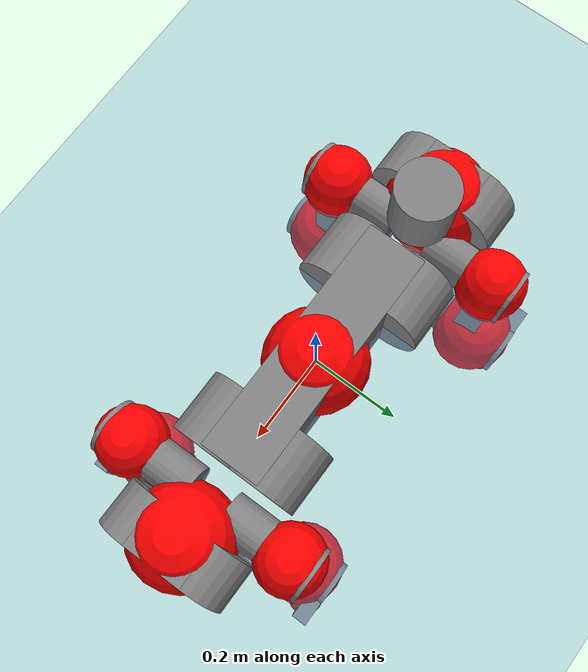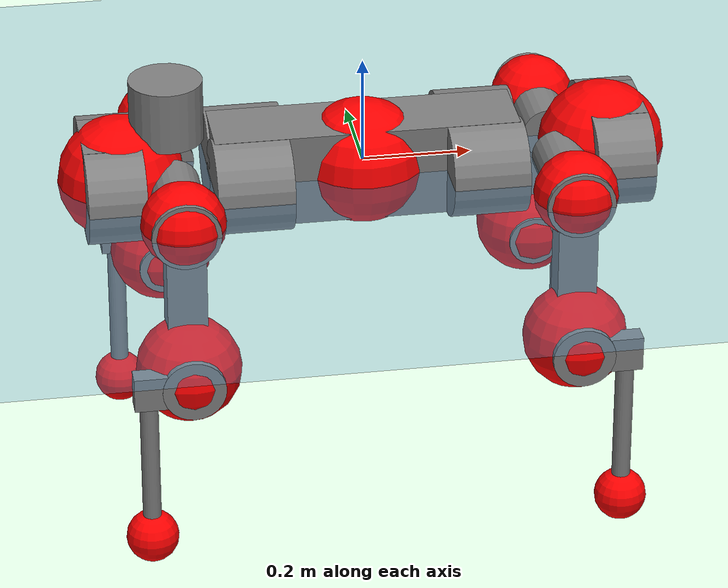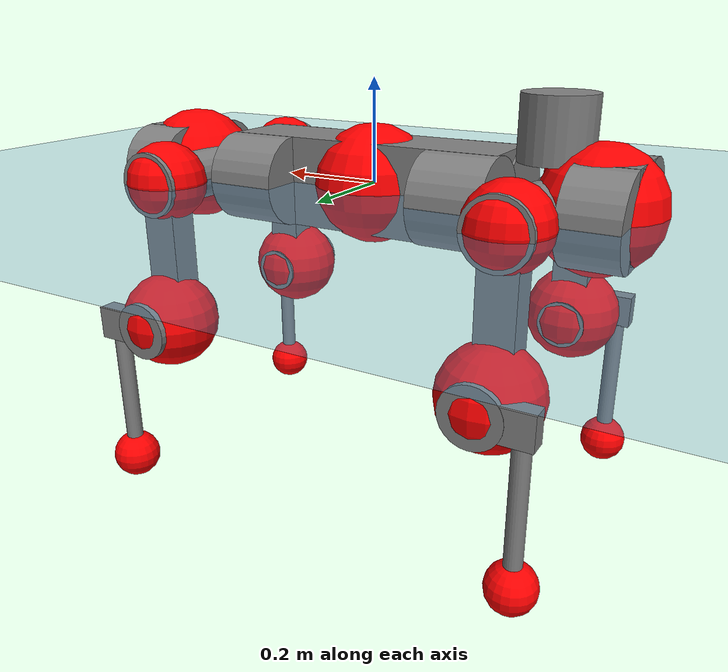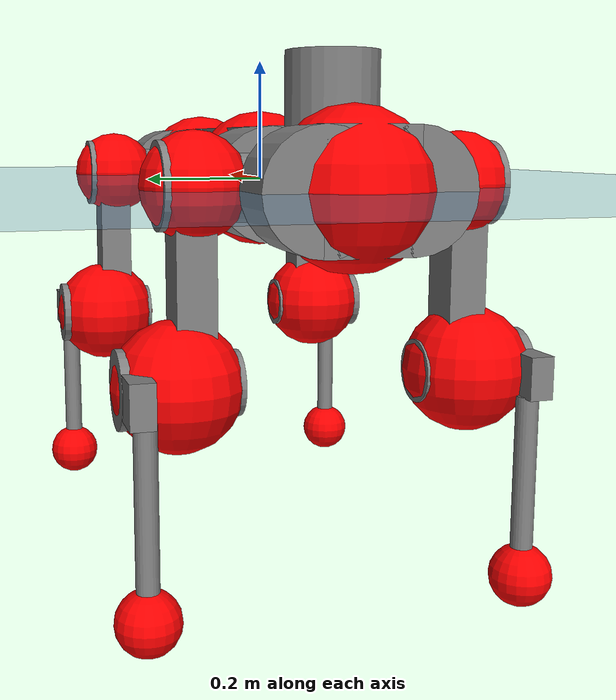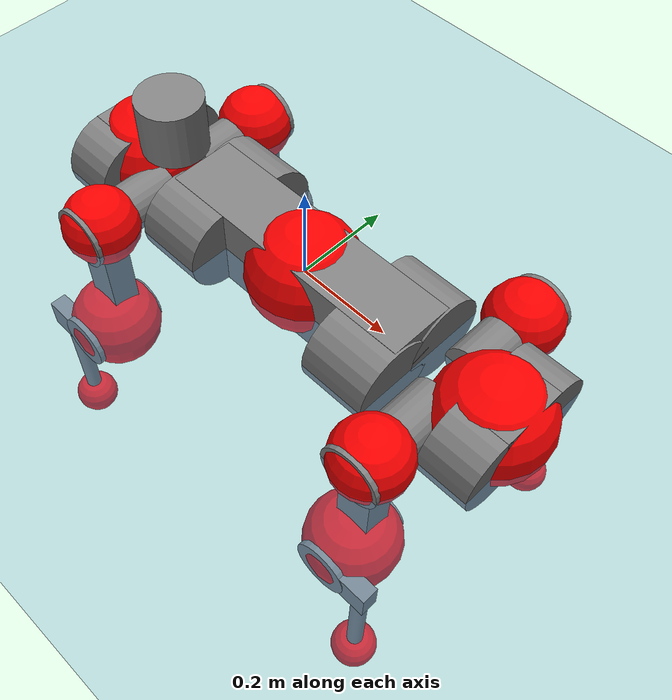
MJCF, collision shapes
<mujoco model="anymal_c">
  <compiler angle="radian" assetdir="assets" balanceinertia="true" inertiafromgeom="false"/>

  <option timestep="0.005" density="1.2" viscosity="2e-05"/>

  <size nkey="1"/>

  <visual>
    <quality shadowsize="8192"/>
    <map shadowclip="0.5"/>
  </visual>

  <default>
    <default class="/">
      <material specular="0" shininess="0.25"/>
      <geom contype="0" conaffinity="0" group="1" solref="-1000 -80"/>
      <site size="0.01 0.005 0.005" group="5"/>
      <general forcelimited="true" forcerange="-80 80" biastype="affine" gainprm="80" biasprm="0 -80 -2"/>
      <default class="anymal_c">
        <joint armature="0.01" damping="0.01" frictionloss="0.1"/>
        <default class="visual">
          <geom type="mesh" group="2"/>
          <default class="visual_zflip"/>
        </default>
        <default class="collision">
          <geom type="cylinder" group="3"/>
          <default class="foot">
            <geom size="0.03 0 0" type="sphere" condim="6" priority="1" friction="0.8 0.02 0.01" solimp="0.015 1 0.03"/>
          </default>
        </default>
      </default>
      <default class="reward_collision_sphere">
        <geom group="5" rgba="1 0 0 1"/>
      </default>
    </default>
  </default>

  <asset>
    <texture type="skybox" colorspace="auto" name="//unnamed_texture_0" builtin="gradient" rgb1="0.95 0.95 0.95" rgb2="0.95 0.95 0.95" width="100" height="600"/>
    <texture type="2d" colorspace="auto" name="texplane" builtin="checker" rgb1="0.345 0.575 0.748" rgb2="0.345 0.575 0.748" markrgb="1 1 1" width="512" height="512"/>
    <texture type="2d" colorspace="linear" name="base" file="base.png"/>
    <texture type="2d" colorspace="linear" name="top_shell" file="top_shell.png"/>
    <texture type="2d" colorspace="linear" name="bottom_shell" file="bottom_shell.png"/>
    <texture type="2d" colorspace="linear" name="remote" file="remote.png"/>
    <texture type="2d" colorspace="linear" name="hatch" file="hatch.png"/>
    <texture type="2d" colorspace="linear" name="handle" file="handle.png"/>
    <texture type="2d" colorspace="linear" name="face" file="face.png"/>
    <texture type="2d" colorspace="linear" name="battery" file="battery.png"/>
    <texture type="2d" colorspace="linear" name="lidar_cage" file="lidar_cage.png"/>
    <texture type="2d" colorspace="linear" name="depth_camera" file="depth_camera.png"/>
    <texture type="2d" colorspace="linear" name="wide_angle_camera" file="wide_angle_camera.png"/>
    <texture type="2d" colorspace="linear" name="lidar" file="lidar.png"/>
    <texture type="2d" colorspace="linear" name="drive" file="drive.png"/>
    <texture type="2d" colorspace="linear" name="hip_l" file="hip_l.png"/>
    <texture type="2d" colorspace="linear" name="shank_l" file="shank_l.png"/>
    <texture type="2d" colorspace="linear" name="foot" file="foot.png"/>
    <texture type="2d" colorspace="linear" name="thigh" file="thigh.png"/>
    <texture type="2d" colorspace="linear" name="shank_r" file="shank_r.png"/>
    <texture type="2d" colorspace="linear" name="hip_r" file="hip_r.png"/>
    <material name="MatPlane" class="/" texture="texplane" texuniform="true" texrepeat="2 2" specular="0.9" shininess="0.5"/>
    <material name="black_plastic" class="/" rgba="0.007 0.007 0.007 1"/>
    <material name="green" class="/" rgba="0.052 0.178 0.033 1"/>
    <material name="red" class="/" rgba="0.178 0.006 0.005 1"/>
    <material name="yellow" class="/" rgba="0.178 0.119 0.006 1"/>
    <material name="lwl" class="/" rgba="0.8 0.8 0.8 1"/>
    <material name="base" class="/" texture="base"/>
    <material name="top_shell" class="/" texture="top_shell"/>
    <material name="bottom_shell" class="/" texture="bottom_shell"/>
    <material name="hip_l" class="/" texture="hip_l"/>
    <material name="thigh" class="/" texture="thigh"/>
    <material name="shank_l" class="/" texture="shank_l"/>
    <material name="foot" class="/" texture="foot"/>
    <material name="hip_r" class="/" texture="hip_r"/>
    <material name="shank" class="/" texture="shank_r"/>
    <material name="hatch" class="/" texture="hatch"/>
    <material name="remote" class="/" texture="remote"/>
    <material name="handle" class="/" texture="handle"/>
    <material name="face" class="/" texture="face"/>
    <material name="depth_camera" class="/" texture="depth_camera"/>
    <material name="wide_angle_camera" class="/" texture="wide_angle_camera"/>
    <material name="battery" class="/" texture="battery"/>
    <material name="lidar_cage" class="/" texture="lidar_cage"/>
    <material name="lidar" class="/" texture="lidar"/>
    <material name="drive" class="/" texture="drive"/>
    <mesh name="base_0" class="/" file="base_0.obj"/>
    <mesh name="base_1" class="/" file="base_1.obj"/>
    <mesh name="base_2" class="/" file="base_2.obj"/>
    <mesh name="base_3" class="/" file="base_3.obj"/>
    <mesh name="base_4" class="/" file="base_4.obj"/>
    <mesh name="base_5" class="/" file="base_5.obj"/>
    <mesh name="top_shell" class="/" file="top_shell.obj"/>
    <mesh name="bottom_shell" class="/" file="bottom_shell.obj"/>
    <mesh name="remote" class="/" file="remote.obj"/>
    <mesh name="handle" class="/" file="handle.obj"/>
    <mesh name="face" class="/" file="face.obj"/>
    <mesh name="wide_angle_camera" class="/" file="wide_angle_camera.obj"/>
    <mesh name="depth_camera" class="/" file="depth_camera.obj"/>
    <mesh name="battery" class="/" file="battery.obj"/>
    <mesh name="lidar_cage" class="/" file="lidar_cage.obj"/>
    <mesh name="lidar" class="/" file="lidar.obj"/>
    <mesh name="drive" class="/" file="drive.obj"/>
    <mesh name="hip_l" class="/" file="hip_l.obj"/>
    <mesh name="thigh" class="/" file="thigh.obj"/>
    <mesh name="shank_l" class="/" file="shank_l.obj"/>
    <mesh name="foot" class="/" file="foot.obj"/>
    <mesh name="hip_r" class="/" file="hip_r.obj"/>
    <mesh name="hatch" class="/" file="hatch.obj"/>
    <mesh name="shank_r" class="/" file="shank_r.obj"/>
  </asset>

  <worldbody>
    <geom name="floor" class="/" size="100 100 0.125" type="plane" group="0" material="MatPlane"/>
    <light name="toplight_shadow" class="/" pos="0 0 5" dir="0.0990148 0.0990148 -0.990148" type="directional" ambient="0.04 0.04 0.04" diffuse="0.55 0.55 0.55" specular="0.12 0.12 0.12"/>
    <light name="toplight_fill" class="/" pos="0 0 5" dir="0.0990148 0.0990148 -0.990148" type="directional" castshadow="false" ambient="0.04 0.04 0.04" diffuse="0.3 0.3 0.3" specular="0.08 0.08 0.08"/>
    <body name="trunk" childclass="anymal_c" pos="0.000148572 0.000564552 -0.000234605" quat="1 -8.28418e-06 7.14198e-06 -1.12851e-06">
      <inertial pos="0.00270236 0.000204747 0.0482166" quat="0.497356 0.500645 0.504344 0.497623" mass="17.565" diaginertia="0.613099 0.418705 0.208009"/>
      <joint name="//unnamed_joint_0" type="free" armature="0" damping="0" frictionloss="0"/>
      <geom name="//unnamed_geom_1" class="visual" material="green" mesh="base_0"/>
      <geom name="//unnamed_geom_2" class="visual" material="yellow" mesh="base_1"/>
      <geom name="//unnamed_geom_3" class="visual" material="red" mesh="base_2"/>
      <geom name="//unnamed_geom_4" class="visual" material="black_plastic" mesh="base_3"/>
      <geom name="//unnamed_geom_5" class="visual" material="lwl" mesh="base_4"/>
      <geom name="//unnamed_geom_6" class="visual" material="base" mesh="base_5"/>
      <geom name="trunk_1" class="collision" size="0.2808 0.0677794 0.0871449" type="box"/>
      <geom name="trunk_2" class="collision" size="0.0871449 0.0702001" pos="0.215386 0.064581 0" quat="0.707107 0 0.707107 0"/>
      <geom name="trunk_3" class="collision" size="0.0871449 0.0702001" pos="-0.215386 0.064581 0" quat="0.707107 0 0.707107 0"/>
      <geom name="trunk_4" class="collision" size="0.0871449 0.0702001" pos="0.215386 -0.064581 0" quat="0.707107 0 0.707107 0"/>
      <geom name="trunk_5" class="collision" size="0.0871449 0.0702001" pos="-0.215386 -0.064581 0" quat="0.707107 0 0.707107 0"/>
      <geom name="//unnamed_geom_12" class="visual" material="top_shell" mesh="top_shell"/>
      <geom name="//unnamed_geom_13" class="visual" material="bottom_shell" mesh="bottom_shell"/>
      <geom name="//unnamed_geom_14" class="visual" material="remote" mesh="remote"/>
      <geom name="//unnamed_geom_15" class="visual" material="handle" mesh="handle"/>
      <geom name="//unnamed_geom_16" class="visual" pos="0.410472 0 0" quat="1 0 0 0" material="face" mesh="face"/>
      <geom name="trunk_6" class="collision" size="0.0532552 0.0677794 0.0871449" pos="0.464938 0 0" type="box"/>
      <geom name="//unnamed_geom_18" class="collision" size="0.0871449 0.0532552" pos="0.464938 0.064581 0" quat="0.707107 0 0.707107 0"/>
      <geom name="//unnamed_geom_19" class="collision" size="0.0871449 0.0532552" pos="0.464938 -0.064581 0" quat="0.707107 0 0.707107 0"/>
      <geom name="//unnamed_geom_20" class="visual" pos="0.457164 0 -0.0289781" quat="0.965926 0 0.258819 0" material="depth_camera" mesh="depth_camera"/>
      <geom name="//unnamed_geom_21" class="visual" pos="0.508015 0 0.0148497" material="wide_angle_camera" mesh="wide_angle_camera"/>
      <geom name="//unnamed_geom_22" class="visual_zflip" pos="-0.410472 0 0" quat="0 0 0 1" material="face" mesh="face"/>
      <geom name="trunk_7" class="collision" size="0.0532552 0.0677794 0.0871449" pos="-0.464938 0 0" quat="0 0 0 1" type="box"/>
      <geom name="//unnamed_geom_24" class="collision" size="0.0871449 0.0532552" pos="-0.464938 -0.064581 0" quat="0 -0.707107 0 0.707107"/>
      <geom name="//unnamed_geom_25" class="collision" size="0.0871449 0.0532552" pos="-0.464938 0.064581 0" quat="0 -0.707107 0 0.707107"/>
      <geom name="//unnamed_geom_26" class="visual" pos="-0.457164 0 -0.0289781" quat="0 -0.258819 0 0.965926" material="depth_camera" mesh="depth_camera"/>
      <geom name="//unnamed_geom_27" class="visual_zflip" pos="-0.508015 0 0.0148497" quat="0 0 0 1" material="wide_angle_camera" mesh="wide_angle_camera"/>
      <geom name="//unnamed_geom_28" class="visual" material="battery" mesh="battery"/>
      <geom name="//unnamed_geom_29" class="visual" pos="0 0.0696526 0.0288038" quat="0.683013 -0.183013 0.183013 0.683013" material="depth_camera" mesh="depth_camera"/>
      <geom name="//unnamed_geom_30" class="visual" pos="0 -0.0696526 0.0288038" quat="0.683013 0.183013 0.183013 -0.683013" material="depth_camera" mesh="depth_camera"/>
      <geom name="//unnamed_geom_31" class="visual" pos="-0.360463 0 0.0729093" quat="1 0 0 0" material="lidar_cage" mesh="lidar_cage"/>
      <geom name="trunk_8" class="collision" size="0.0677794 0.0580966" pos="-0.360463 0 0.132427"/>
      <geom name="//unnamed_geom_33" class="visual" pos="-0.360463 -2.65963e-05 0.141057" quat="0.707107 0 0 -0.707107" material="lidar" mesh="lidar"/>
      <geom name="//unnamed_geom_34" class="visual" pos="0.296986 0.0959735 -1.19678e-09" quat="0.258819 0.965926 0 0" material="drive" mesh="drive"/>
      <geom name="//unnamed_geom_35" class="visual" pos="0.296986 -0.0959735 1.19678e-09" quat="0.258819 -0.965926 0 0" material="drive" mesh="drive"/>
      <geom name="//unnamed_geom_36" class="visual" pos="-0.296986 0.0959735 1.19678e-09" quat="0 0 0.965926 -0.258819" material="drive" mesh="drive"/>
      <geom name="//unnamed_geom_37" class="visual" pos="-0.296986 -0.0959735 -1.19678e-09" quat="0 0 -0.965926 -0.258819" material="drive" mesh="drive"/>
      <geom name="//unnamed_geom_38" class="visual" pos="0.114873 0 0.0724133" quat="1 0 0 0" material="hatch" mesh="hatch"/>
      <geom name="//unnamed_geom_39" class="reward_collision_sphere" size="0.116193"/>
      <geom name="//unnamed_geom_40" class="reward_collision_sphere" size="0.116193" pos="0.445627 0 0"/>
      <geom name="//unnamed_geom_41" class="reward_collision_sphere" size="0.116193" pos="-0.445627 0 0"/>
      <site name="imu" pos="0.243102 0.00323162 0.048754" size="0.00968277"/>
      <camera name="track" pos="0 -1.84517 0" quat="0.707107 0.707107 0 0" mode="trackcom"/>
      <camera name="ego_camera" pos="0.445627 0 -0.0396785" quat="-0.5 -0.5 0.5 0.5"/>
      <body name="LF_HIP" pos="0.296495 0.0973291 -8.62209e-05" quat="0.258923 0.965898 -3.82642e-05 -0.000138614">
        <inertial pos="0.0559701 -0.0137533 -0.00878408" quat="-0.127763 0.709715 -0.134809 0.679564" mass="2.53995" diaginertia="0.0055742 0.00332949 0.00317779"/>
        <joint name="LF_HAA" pos="0 0 0" axis="0.999999 0.001508 -0.000513391" range="-0.696881 0.474921" armature="0.00986228" damping="0.0101178" frictionloss="0.092604"/>
        <geom name="//unnamed_geom_42" class="visual" pos="0 -7.04011e-05 1.15633e-05" quat="0.258819 -0.965926 0 0" material="hip_l" mesh="hip_l"/>
        <geom name="//unnamed_geom_43" class="visual" pos="0.0593179 -0.0710096 -0.0415106" quat="0.183013 -0.683013 0.683013 0.183013" material="drive" mesh="drive"/>
        <geom name="//unnamed_geom_44" class="collision" size="0.0484139 0.0677794" pos="0.0593179 -0.0110339 -0.00684951" quat="-0.353553 -0.612372 0.612372 -0.353553"/>
        <body name="LF_THIGH" pos="0.0595725 -0.0665413 -0.0413083" quat="0.183411 -0.683099 0.6828 0.183084">
          <inertial pos="0.0299669 -0.000809118 -0.243332" quat="0.993205 -0.00485748 -0.0803743 0.0840242" mass="2.78704" diaginertia="0.0286723 0.0199263 0.00399894"/>
          <joint name="LF_HFE" pos="0 0 0" axis="1 6.67181e-05 0.000229365" stiffness="0.00308809" range="-3.15479 3.14466" armature="0.00950593" damping="0.0117129" frictionloss="0.0958338"/>
          <geom name="//unnamed_geom_45" class="visual" pos="0.0013469 2.1224e-06 0" quat="0.707107 0 0 -0.707107" material="thigh" mesh="thigh"/>
          <geom name="//unnamed_geom_46" class="collision" size="0.062938 0.0387311" pos="0.0396113 0 0" quat="0.5 0.5 -0.5 -0.5"/>
          <geom name="//unnamed_geom_47" class="collision" size="0.0363104 0.0290483 0.136831" pos="0.0297085 0 -0.140178" quat="0.707107 0 0 -0.707107" type="box"/>
          <geom name="//unnamed_geom_48" class="visual" pos="0.0993253 0 -0.28271" quat="1 0 0 0" material="drive" mesh="drive"/>
          <geom name="//unnamed_geom_49" class="collision" size="0.0484139 0.0677794" pos="0.0300056 0 -0.28271" quat="0.707107 0 0.707107 0"/>
          <geom name="//unnamed_geom_50" class="reward_collision_sphere" size="0.0774622" pos="0.0247571 0 0"/>
          <body name="LF_SHANK" pos="0.0993064 -0.000836743 -0.282625" quat="1 -5.12672e-06 -0.000282344 0.000263257">
            <inertial pos="0.0044871 -0.0565396 -0.0808431" quat="0.992989 -0.115329 -0.000877385 -0.0259072" mass="0.532927" diaginertia="0.00973962 0.0062058 0.00106461"/>
            <joint name="LF_KFE" pos="0 0 0" axis="1 -4.71524e-05 0.000584023" range="-3.15529 3.14083" armature="0.0101599" damping="0.0095637" frictionloss="0.09628"/>
            <geom name="//unnamed_geom_51" class="visual" pos="0.000439196 0.00234181 0" quat="0.707107 0 0 -0.707107" material="shank_l" mesh="shank_l"/>
            <geom name="LF_kfe_act" class="collision" size="0.0580966 0.0193655" pos="0.0198056 0 0" quat="0.5 0.5 -0.5 -0.5"/>
            <geom name="//unnamed_geom_53" class="collision" size="0.055675 0.0326794 0.0183973" pos="0.0198056 -0.0530477 0" quat="0.5 0.5 -0.5 -0.5" type="box"/>
            <geom name="//unnamed_geom_54" class="visual" pos="0.0129231 -0.0803867 -0.335254" quat="0.382683 0 0 -0.92388" material="foot" mesh="foot"/>
            <geom name="LF_calf" class="collision" size="0.0169448 0.136771" pos="0.0129232 -0.0811414 -0.167627" quat="0.707107 0 0 -0.707107"/>
            <geom name="LF_foot" class="foot" size="0.0297936" pos="0.0129232 -0.0811414 -0.312935" quat="0.707107 0 0 -0.707107"/>
            <geom name="//unnamed_geom_57" class="reward_collision_sphere" size="0.0968277" pos="-0.0495141 0 0"/>
            <geom name="//unnamed_geom_58" class="reward_collision_sphere" size="0.0484139" pos="0.0129232 -0.0811414 -0.312935"/>
            <site name="LF_foot" class="foot" pos="0.0129232 -0.0811414 -0.312935" quat="0.707107 0 0 -0.707107" size="0.00968277"/>
          </body>
        </body>
      </body>
      <body name="RF_HIP" pos="0.297209 -0.095725 0.00130607" quat="0.258926 -0.965897 -8.19263e-05 3.79974e-05">
        <inertial pos="0.0563115 0.0149813 -0.00781263" quat="0.13512 0.679146 0.126539 0.710275" mass="2.51633" diaginertia="0.00554709 0.00323092 0.00313103"/>
        <joint name="RF_HAA" pos="0 0 0" axis="0.999996 -0.00265743 -0.00041259" range="-0.491297 0.718351" armature="0.00979416" damping="0.0107195" frictionloss="0.0965379"/>
        <geom name="//unnamed_geom_59" class="visual" pos="0 7.04005e-05 1.15633e-05" quat="0.258819 0.965926 0 0" material="hip_r" mesh="hip_r"/>
        <geom name="//unnamed_geom_60" class="visual" pos="0.0593179 0.0710096 -0.0415106" quat="0.183013 0.683013 0.683013 -0.183013" material="drive" mesh="drive"/>
        <geom name="//unnamed_geom_61" class="collision" size="0.0484139 0.0677794" pos="0.0593179 0.0110339 -0.00684951" quat="-0.353553 0.612372 0.612372 0.353553"/>
        <body name="RF_THIGH" pos="0.0600599 0.0681184 -0.0431201" quat="0.183371 0.682858 0.683018 -0.183212">
          <inertial pos="0.0313032 -0.000997641 -0.243228" quat="0.993089 -0.00133371 -0.0791654 0.0866312" mass="2.74951" diaginertia="0.0285932 0.019917 0.00401677"/>
          <joint name="RF_HFE" pos="0 0 0" axis="0.999996 9.48494e-05 -0.00267168" stiffness="0.00485806" range="-3.15159 3.13869" armature="0.00964553" damping="0.0119326" frictionloss="0.096664"/>
          <geom name="//unnamed_geom_62" class="visual" pos="0.0013469 2.1224e-06 0" quat="0.707107 0 0 -0.707107" material="thigh" mesh="thigh"/>
          <geom name="//unnamed_geom_63" class="collision" size="0.062938 0.0387311" pos="0.0396113 0 0" quat="0.5 0.5 0.5 0.5"/>
          <geom name="//unnamed_geom_64" class="collision" size="0.0363104 0.0290483 0.136831" pos="0.0297085 0 -0.140178" quat="0.707107 0 0 0.707107" type="box"/>
          <geom name="//unnamed_geom_65" class="visual" pos="0.0993253 0 -0.28271" quat="1 0 0 0" material="drive" mesh="drive"/>
          <geom name="//unnamed_geom_66" class="collision" size="0.0484139 0.0677794" pos="0.0300056 0 -0.28271" quat="0.707107 0 0.707107 0"/>
          <geom name="//unnamed_geom_67" class="reward_collision_sphere" size="0.0774622" pos="0.0247571 0 0"/>
          <body name="RF_SHANK" pos="0.098651 0.000408688 -0.281678" quat="1 -4.35099e-05 -1.13572e-06 2.86607e-06">
            <inertial pos="0.00523341 0.0564187 -0.0806657" quat="0.992679 0.118294 0.00265561 0.0242519" mass="0.532212" diaginertia="0.00973481 0.00617111 0.00107617"/>
            <joint name="RF_KFE" pos="0 0 0" axis="0.99998 -0.00253614 0.0057603" range="-3.12534 3.13602" armature="0.00987417" damping="0.00964782" frictionloss="0.0976097"/>
            <geom name="//unnamed_geom_68" class="visual" pos="0.000439193 -0.00234181 0" quat="0.707107 0 0 0.707107" material="shank" mesh="shank_r"/>
            <geom name="RF_kfe_act" class="collision" size="0.0580966 0.0193655" pos="0.0198056 0 0" quat="0.5 0.5 0.5 0.5"/>
            <geom name="//unnamed_geom_70" class="collision" size="0.055675 0.0326794 0.0183973" pos="0.0198056 0.0530477 0" quat="0.5 0.5 0.5 0.5" type="box"/>
            <geom name="//unnamed_geom_71" class="visual" pos="0.0129233 0.0803867 -0.335254" quat="0.382683 0 0 0.92388" material="foot" mesh="foot"/>
            <geom name="RF_calf" class="collision" size="0.0169448 0.136771" pos="0.0129232 0.0811414 -0.167627" quat="0.707107 0 0 0.707107"/>
            <geom name="RF_foot" class="foot" size="0.0305098" pos="0.0129232 0.0811414 -0.312935" quat="0.707107 0 0 0.707107"/>
            <geom name="//unnamed_geom_74" class="reward_collision_sphere" size="0.0968277" pos="-0.0495141 0 0"/>
            <geom name="//unnamed_geom_75" class="reward_collision_sphere" size="0.0484139" pos="0.0129232 0.0811414 -0.312935"/>
            <site name="RF_foot" class="foot" pos="0.0129232 0.0811414 -0.312935" quat="0.707107 0 0 0.707107" size="0.00968277"/>
          </body>
        </body>
      </body>
      <body name="LH_HIP" pos="-0.295914 0.0967074 -0.000177211" quat="-3.89638e-05 3.61272e-05 0.965897 -0.258926">
        <inertial pos="0.0563436 0.0141981 -0.00911618" quat="0.134492 0.678956 0.129098 0.710116" mass="2.51848" diaginertia="0.00554639 0.00327142 0.00314542"/>
        <joint name="LH_HAA" pos="0 0 0" axis="0.999999 -0.0009473 0.000566684" range="-0.483897 0.729023" armature="0.00968965" damping="0.00708685" frictionloss="0.0992196"/>
        <geom name="//unnamed_geom_76" class="visual" pos="0 7.04005e-05 1.15633e-05" quat="-0.258819 -0.965926 0 0" material="hip_r" mesh="hip_r"/>
        <geom name="//unnamed_geom_77" class="visual" pos="0.0593179 0.0710096 -0.0415106" quat="0.183013 0.683013 0.683013 -0.183013" material="drive" mesh="drive"/>
        <geom name="//unnamed_geom_78" class="collision" size="0.0484139 0.0677794" pos="0.0593179 0.0110339 -0.00684951" quat="-0.353553 0.612372 0.612372 0.353553"/>
        <body name="LH_THIGH" pos="0.0595785 0.0667126 -0.0430226" quat="0.183249 0.683194 0.682777 -0.182979">
          <inertial pos="0.0305605 -0.00011169 -0.24407" quat="0.992519 -0.00123647 -0.0826408 0.0898595" mass="2.81656" diaginertia="0.028596 0.0198184 0.00402065"/>
          <joint name="LH_HFE" pos="0 0 0" axis="0.999993 0.00360951 0.000499635" range="-3.13212 3.12141" armature="0.00979911" damping="0.00833157" frictionloss="0.0977965"/>
          <geom name="//unnamed_geom_79" class="visual" pos="0.0013469 2.1224e-06 0" quat="0.707107 0 0 -0.707107" material="thigh" mesh="thigh"/>
          <geom name="//unnamed_geom_80" class="collision" size="0.062938 0.0387311" pos="0.0396113 0 0" quat="0.5 0.5 -0.5 -0.5"/>
          <geom name="//unnamed_geom_81" class="collision" size="0.0363104 0.0290483 0.136831" pos="0.0297085 0 -0.140178" quat="0.707107 0 0 -0.707107" type="box"/>
          <geom name="//unnamed_geom_82" class="visual" pos="0.0993253 0 -0.28271" quat="1 0 0 0" material="drive" mesh="drive"/>
          <geom name="//unnamed_geom_83" class="collision" size="0.0484139 0.0677794" pos="0.0300056 0 -0.28271" quat="0.707107 0 0.707107 0"/>
          <geom name="//unnamed_geom_84" class="reward_collision_sphere" size="0.0774622" pos="0.0247571 0 0"/>
          <body name="LH_SHANK" pos="0.100359 -0.00198566 -0.283267" quat="1 0.000185009 -0.000246735 5.79562e-05">
            <inertial pos="0.00565832 0.0564272 -0.0803578" quat="0.99279 0.117161 -0.000888241 0.0253062" mass="0.521987" diaginertia="0.00956078 0.00612548 0.00106394"/>
            <joint name="LH_KFE" pos="0 0 0" axis="1 0.000410913 0.000605455" range="-3.12912 3.15233" armature="0.00969158" damping="0.0129166" frictionloss="0.0958187"/>
            <geom name="//unnamed_geom_85" class="visual" pos="0.000439193 -0.00234181 0" quat="-0.707107 0 0 -0.707107" material="shank" mesh="shank_r"/>
            <geom name="LH_kfe_act" class="collision" size="0.0580966 0.0193655" pos="0.0198056 0 0" quat="0.5 0.5 -0.5 -0.5"/>
            <geom name="//unnamed_geom_87" class="collision" size="0.055675 0.0326794 0.0183973" pos="0.0198056 0.0530477 0" quat="0.5 0.5 -0.5 -0.5" type="box"/>
            <geom name="//unnamed_geom_88" class="visual" pos="0.0129233 0.0803867 -0.335254" quat="-0.382683 0 0 -0.92388" material="foot" mesh="foot"/>
            <geom name="LH_calf" class="collision" size="0.0169448 0.136771" pos="0.0129232 0.0811414 -0.167627" quat="0.707107 0 0 -0.707107"/>
            <geom name="LH_foot" class="foot" size="0.0297694" pos="0.0129232 0.0811414 -0.312935" quat="0.707107 0 0 -0.707107"/>
            <geom name="//unnamed_geom_91" class="reward_collision_sphere" size="0.0968277" pos="-0.0495141 0 0"/>
            <geom name="//unnamed_geom_92" class="reward_collision_sphere" size="0.0484139" pos="0.0129232 0.0811414 -0.312935"/>
            <site name="LH_foot" class="foot" pos="0.0129232 0.0811414 -0.312935" quat="0.707107 0 0 -0.707107" size="0.00968277"/>
          </body>
        </body>
      </body>
      <body name="RH_HIP" pos="-0.296442 -0.0971803 0.00049409" quat="0.000135373 -0.000215897 -0.965943 -0.258756">
        <inertial pos="0.0565033 -0.0144058 -0.00754761" quat="-0.12716 0.711097 -0.133904 0.67841" mass="2.49024" diaginertia="0.00547074 0.00324217 0.00313773"/>
        <joint name="RH_HAA" pos="0 0 0" axis="0.999999 -0.00143992 -0.000234642" range="-0.726723 0.48729" armature="0.0097184" damping="0.0087077" frictionloss="0.0963466"/>
        <geom name="//unnamed_geom_93" class="visual" pos="0 -7.04011e-05 1.15633e-05" quat="-0.258819 0.965926 0 0" material="hip_l" mesh="hip_l"/>
        <geom name="//unnamed_geom_94" class="visual" pos="0.0593179 -0.0710096 -0.0415106" quat="-0.183013 0.683013 -0.683013 -0.183013" material="drive" mesh="drive"/>
        <geom name="//unnamed_geom_95" class="collision" size="0.0484139 0.0677794" pos="0.0593179 -0.0110339 -0.00684951" quat="0.353553 0.612372 -0.612372 0.353553"/>
        <body name="RH_THIGH" pos="0.058863 -0.067667 -0.0421993" quat="-0.183076 0.683093 -0.682883 -0.183135">
          <inertial pos="0.0306846 -0.000341115 -0.244449" quat="0.993359 -0.00692944 -0.0793338 0.0830475" mass="2.81249" diaginertia="0.0290407 0.0201984 0.00406324"/>
          <joint name="RH_HFE" pos="0 0 0" axis="0.999999 -0.00127714 0.000150968" stiffness="0.00174107" range="-3.13102 3.12445" armature="0.00983902" damping="0.00661332" frictionloss="0.0989852"/>
          <geom name="//unnamed_geom_96" class="visual" pos="0.0013469 2.1224e-06 0" quat="0.707107 0 0 -0.707107" material="thigh" mesh="thigh"/>
          <geom name="//unnamed_geom_97" class="collision" size="0.062938 0.0387311" pos="0.0396113 0 0" quat="0.5 0.5 0.5 0.5"/>
          <geom name="//unnamed_geom_98" class="collision" size="0.0363104 0.0290483 0.136831" pos="0.0297085 0 -0.140178" quat="0.707107 0 0 0.707107" type="box"/>
          <geom name="//unnamed_geom_99" class="visual" pos="0.0993253 0 -0.28271" quat="1 0 0 0" material="drive" mesh="drive"/>
          <geom name="//unnamed_geom_100" class="collision" size="0.0484139 0.0677794" pos="0.0300056 0 -0.28271" quat="0.707107 0 0.707107 0"/>
          <geom name="//unnamed_geom_101" class="reward_collision_sphere" size="0.0774622" pos="0.0247571 0 0"/>
          <body name="RH_SHANK" pos="0.097495 0.00079391 -0.282438" quat="1 0.000286662 -0.000185037 -0.000227924">
            <inertial pos="0.00662379 -0.0563424 -0.0803068" quat="0.993052 -0.115018 -0.00173488 -0.0248144" mass="0.537463" diaginertia="0.00973162 0.00616951 0.00108416"/>
            <joint name="RH_KFE" pos="0 0 0" axis="0.999995 -0.00239828 -0.00213129" range="-3.11683 3.14292" armature="0.00957125" damping="0.00813067" frictionloss="0.0975936"/>
            <geom name="//unnamed_geom_102" class="visual" pos="0.000439196 0.00234181 0" quat="0.707107 0 0 -0.707107" material="shank_l" mesh="shank_l"/>
            <geom name="RH_kfe_act" class="collision" size="0.0580966 0.0193655" pos="0.0198056 0 0" quat="0.5 0.5 0.5 0.5"/>
            <geom name="//unnamed_geom_104" class="collision" size="0.055675 0.0326794 0.0183973" pos="0.0198056 -0.0530477 0" quat="0.5 0.5 0.5 0.5" type="box"/>
            <geom name="//unnamed_geom_105" class="visual" pos="0.0129231 -0.0803867 -0.335254" quat="0.382683 0 0 -0.92388" material="foot" mesh="foot"/>
            <geom name="RH_calf" class="collision" size="0.0169448 0.136771" pos="0.0129232 -0.0811414 -0.167627" quat="0.707107 0 0 0.707107"/>
            <geom name="RH_foot" class="foot" size="0.0286508" pos="0.0129232 -0.0811414 -0.312935" quat="0.707107 0 0 0.707107"/>
            <geom name="//unnamed_geom_108" class="reward_collision_sphere" size="0.0968277" pos="-0.0495141 0 0"/>
            <geom name="//unnamed_geom_109" class="reward_collision_sphere" size="0.0484139" pos="0.0129232 -0.0811414 -0.312935"/>
            <site name="RH_foot" class="foot" pos="0.0129232 -0.0811414 -0.312935" quat="0.707107 0 0 0.707107" size="0.00968277"/>
          </body>
        </body>
      </body>
    </body>
  </worldbody>

  <contact>
    <pair class="/" geom1="floor" geom2="LF_foot" name="//unnamed_contact_0"/>
    <pair class="/" geom1="floor" geom2="RF_foot" name="//unnamed_contact_1"/>
    <pair class="/" geom1="floor" geom2="LH_foot" name="//unnamed_contact_2"/>
    <pair class="/" geom1="floor" geom2="RH_foot" name="//unnamed_contact_3"/>
  </contact>

  <actuator>
    <general name="LF_HAA" class="/" joint="LF_HAA" forcerange="-81.722 81.722" gainprm="77.885" biasprm="0 -77.885 -1.86"/>
    <general name="LF_HFE" class="/" joint="LF_HFE" forcerange="-80.3208 80.3208" gainprm="77.885" biasprm="0 -77.885 -1.86"/>
    <general name="LF_KFE" class="/" joint="LF_KFE" forcerange="-76.0672 76.0672" gainprm="77.885" biasprm="0 -77.885 -1.86"/>
    <general name="RF_HAA" class="/" joint="RF_HAA" forcerange="-79.577 79.577" gainprm="77.885" biasprm="0 -77.885 -1.86"/>
    <general name="RF_HFE" class="/" joint="RF_HFE" forcerange="-80.6043 80.6043" gainprm="77.885" biasprm="0 -77.885 -1.86"/>
    <general name="RF_KFE" class="/" joint="RF_KFE" forcerange="-75.1809 75.1809" gainprm="77.885" biasprm="0 -77.885 -1.86"/>
    <general name="LH_HAA" class="/" joint="LH_HAA" forcerange="-76.9102 76.9102" gainprm="77.885" biasprm="0 -77.885 -1.86"/>
    <general name="LH_HFE" class="/" joint="LH_HFE" forcerange="-79.3643 79.3643" gainprm="77.885" biasprm="0 -77.885 -1.86"/>
    <general name="LH_KFE" class="/" joint="LH_KFE" forcerange="-80.1674 80.1674" gainprm="77.885" biasprm="0 -77.885 -1.86"/>
    <general name="RH_HAA" class="/" joint="RH_HAA" forcerange="-76.218 76.218" gainprm="77.885" biasprm="0 -77.885 -1.86"/>
    <general name="RH_HFE" class="/" joint="RH_HFE" forcerange="-77.4964 77.4964" gainprm="77.885" biasprm="0 -77.885 -1.86"/>
    <general name="RH_KFE" class="/" joint="RH_KFE" forcerange="-77.8268 77.8268" gainprm="77.885" biasprm="0 -77.885 -1.86"/>
  </actuator>

  <sensor>
    <gyro site="imu" name="imu_angular_velocity"/>
    <velocimeter site="imu" name="imu_linear_velocity"/>
    <framelinvel objtype="site" objname="LF_foot" name="LF_foot_global_linear_velocity"/>
    <framelinvel objtype="site" objname="RF_foot" name="RF_foot_global_linear_velocity"/>
    <framelinvel objtype="site" objname="LH_foot" name="LH_foot_global_linear_velocity"/>
    <framelinvel objtype="site" objname="RH_foot" name="RH_foot_global_linear_velocity"/>
  </sensor>

  <keyframe>
    <key name="home" qpos="0 0 0.55 1 0 0 0 0 0.4 -0.8 0 -0.4 0.8 0 -0.4 0.8 0 0.4 -0.8"/>
  </keyframe>
</mujoco>
